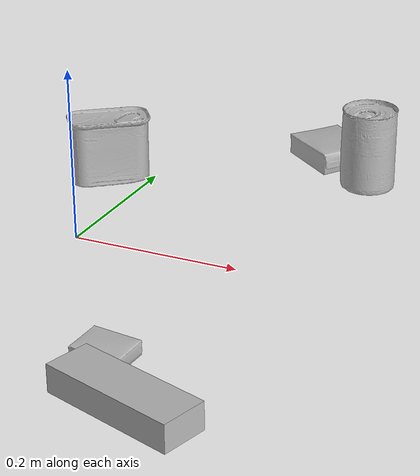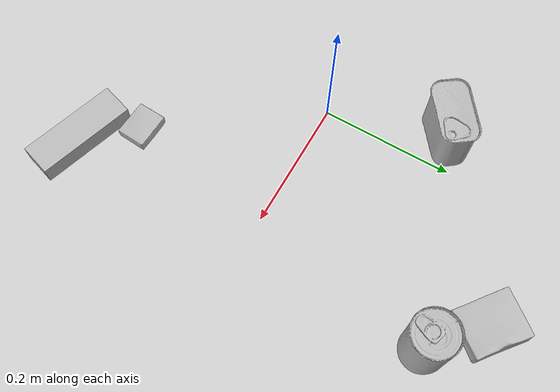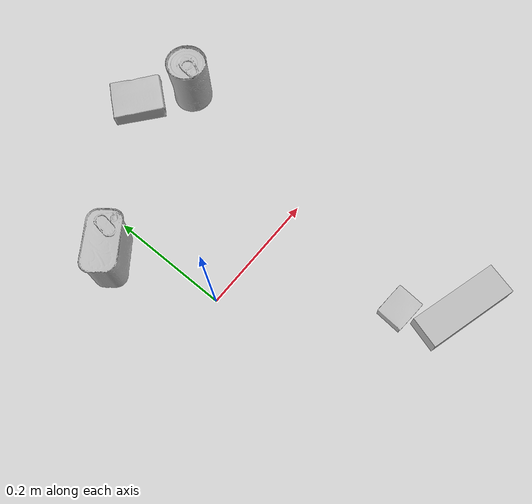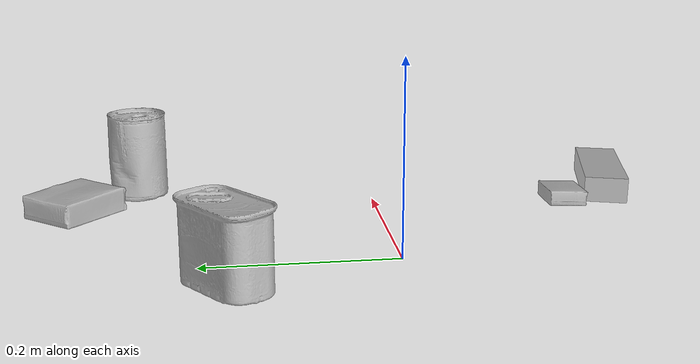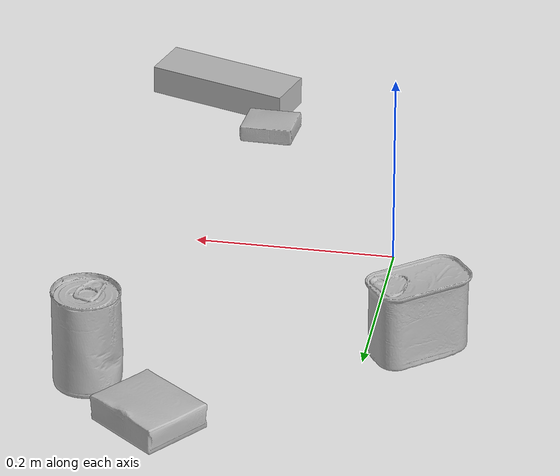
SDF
<sdf version="1.4">
  <world name="default">
    <light name="light1" type="point">
      <pose>0 0 1 0 0 0</pose>
      <diffuse>3 3 3 1</diffuse>
      <specular>3 3 3 1</specular>
    </light>
    <light name="light2" type="point">
      <pose>0 0.5 2 0 0 0</pose>
      <diffuse>1 1 1 1</diffuse>
      <specular>1 1 1 1</specular>
    </light>
    <light name="light3" type="point">
      <pose>0 0.5 2 0 0 0</pose>
      <diffuse>3 3 3 1</diffuse>
      <specular>3 3 3 1</specular>
    </light>
    <scene>
      <ambient>0.7 0.7 0.7</ambient>
    </scene>
    <model name="box1">
      <link name="link_box1">
        <collision name="default">
          <geometry>
            <mesh>
              <uri>model://pudding_box/collision_meshes/collision.obj</uri>
              <scale>0.5 0.5 0.5</scale>
            </mesh>
          </geometry>
          <surface>
            <friction>
              <ode>
                <mu>0.5</mu>
                <mu2>0.5</mu2>
              </ode>
            </friction>
          <contact>
        <ode>
            <max_vel>0</max_vel>
            <min_depth>0.0001</min_depth>
            <kp>1e8</kp>
        </ode>
    </contact></surface>
        </collision>
        <visual name="default">
          <geometry>
            <mesh>
              <uri>model://pudding_box/visual_meshes/visual.dae</uri>
              <scale>0.5 0.5 0.5</scale>
            </mesh>
          </geometry>
        </visual>
        <inertial>
          <mass>0.040720973163843155</mass>
          <pose>0.00024474109522998333 0.0004033942532259971 -0.0002594413817860186 0.005213101818388509 -0.006603799159636292 0.020079815843731863</pose>
          <inertia>
            <ixx>1.1508242e-05</ixx>
            <iyy>7.742825e-06</iyy>
            <izz>1.6994923e-05</izz>
            <ixy>0</ixy>
            <ixz>0</ixz>
            <iyz>0</iyz>
          </inertia>
        </inertial>
      </link>
      <pose>0.16370108723640442 -0.22565865516662598 0.00986290443688631 0.02234853861392874 -0.011391733787687453 1.4905696207448373</pose>
    </model>
    <model name="box2">
      <link name="link_box2">
        <collision name="default">
          <geometry>
            <mesh>
              <uri>model://jenga/collision_meshes/collision.obj</uri>
              <scale>1.0 1.0 1.0</scale>
            </mesh>
          </geometry>
          <surface>
            <friction>
              <ode>
                <mu>0.5</mu>
                <mu2>0.5</mu2>
              </ode>
            </friction>
          <contact>
        <ode>
            <max_vel>0</max_vel>
            <min_depth>0.0001</min_depth>
            <kp>1e8</kp>
        </ode>
    </contact></surface>
        </collision>
        <visual name="default">
          <geometry>
            <mesh>
              <uri>model://jenga/visual_meshes/visual.dae</uri>
              <scale>1.0 1.0 1.0</scale>
            </mesh>
          </geometry>
        </visual>
        <inertial>
          <mass>0.2260044664144516</mass>
          <pose>-2.502855807051674e-07 -0.00010250010382151231 -4.0923401684267446e-05 0.0 -7.34215461761844e-07 0.0</pose>
          <inertia>
            <ixx>6.254092e-05</ixx>
            <iyy>0.00042377558</iyy>
            <izz>0.00045241645</izz>
            <ixy>0</ixy>
            <ixz>0</ixz>
            <iyz>0</iyz>
          </inertia>
        </inertial>
      </link>
      <pose>0.2221561223268509 -0.2973788380622864 0.015000000596046448 -1.9889607022496598e-08 -2.6558969585345077e-09 -0.30501339531755367</pose>
    </model>
    <model name="box3">
      <link name="link_box3">
        <collision name="default">
          <geometry>
            <mesh>
              <uri>model://gelatin_box/collision_meshes/collision.obj</uri>
              <scale>1.0 1.0 1.0</scale>
            </mesh>
          </geometry>
          <surface>
            <friction>
              <ode>
                <mu>0.5</mu>
                <mu2>0.5</mu2>
              </ode>
            </friction>
          <contact>
        <ode>
            <max_vel>0</max_vel>
            <min_depth>0.0001</min_depth>
            <kp>1e8</kp>
        </ode>
    </contact></surface>
        </collision>
        <visual name="default">
          <geometry>
            <mesh>
              <uri>model://gelatin_box/visual_meshes/visual.dae</uri>
              <scale>1.0 1.0 1.0</scale>
            </mesh>
          </geometry>
        </visual>
        <inertial>
          <mass>0.21249663829803467</mass>
          <pose>0.000431961816502735 0.00011156871914863586 -0.0003640321083366871 -0.0010503720865678746 -0.004755816824885886 0.016440563196489677</pose>
          <inertia>
            <ixx>0.00015000527</ixx>
            <iyy>0.000107147986</iyy>
            <izz>0.00022834145</izz>
            <ixy>0</ixy>
            <ixz>0</ixz>
            <iyz>0</iyz>
          </inertia>
        </inertial>
      </link>
      <pose>0.1823674887418747 0.34366488456726074 0.015168309211730957 0.005597020976332927 -0.007304070384122358 0.8954139422398979</pose>
    </model>
    <model name="can1">
      <link name="link_can1">
        <collision name="default">
          <geometry>
            <mesh>
              <uri>model://tomato_soup_can/collision_meshes/collision.obj</uri>
              <scale>1.0 1.0 1.0</scale>
            </mesh>
          </geometry>
          <surface>
            <friction>
              <ode>
                <mu>0.5</mu>
                <mu2>0.5</mu2>
              </ode>
            </friction>
          <contact>
        <ode>
            <max_vel>0</max_vel>
            <min_depth>0.0001</min_depth>
            <kp>1e8</kp>
        </ode>
    </contact></surface>
        </collision>
        <visual name="default">
          <geometry>
            <mesh>
              <uri>model://tomato_soup_can/visual_meshes/visual.dae</uri>
              <scale>1.0 1.0 1.0</scale>
            </mesh>
          </geometry>
        </visual>
        <inertial>
          <mass>0.23179346323013306</mass>
          <pose>0.00012652273289859295 0.00010805525380419567 -0.0017973976209759712 0.00702006934742656 0.00042299045868732465 -0.009902874376192201</pose>
          <inertia>
            <ixx>0.0002541419</ixx>
            <iyy>0.00025267305</iyy>
            <izz>0.00013171937</izz>
            <ixy>0</ixy>
            <ixz>0</ixz>
            <iyz>0</iyz>
          </inertia>
        </inertial>
      </link>
      <pose>0.254375696182251 0.2796277105808258 0.05127402022480965 -6.472301902805726e-07 -9.977279721769708e-07 -0.5677391233370964</pose>
    </model>
    <model name="can2">
      <link name="link_can2">
        <collision name="default">
          <geometry>
            <mesh>
              <uri>model://potted_meat_can/collision_meshes/collision.obj</uri>
              <scale>1.0 1.0 1.0</scale>
            </mesh>
          </geometry>
          <surface>
            <friction>
              <ode>
                <mu>0.5</mu>
                <mu2>0.5</mu2>
              </ode>
            </friction>
          <contact>
        <ode>
            <max_vel>0</max_vel>
            <min_depth>0.0001</min_depth>
            <kp>1e8</kp>
        </ode>
    </contact></surface>
        </collision>
        <visual name="default">
          <geometry>
            <mesh>
              <uri>model://potted_meat_can/visual_meshes/visual.dae</uri>
              <scale>1.0 1.0 1.0</scale>
            </mesh>
          </geometry>
        </visual>
        <inertial>
          <mass>0.3195023536682129</mass>
          <pose>0.00022888148669153452 -5.98910846747458e-05 -0.0006367437308654189 -0.028093352727545092 -0.0072326048209280834 0.015406269022640915</pose>
          <inertia>
            <ixx>0.00041100648</ixx>
            <iyy>0.0002497176</iyy>
            <izz>0.00029892896</izz>
            <ixy>0</ixy>
            <ixz>0</ixz>
            <iyz>0</iyz>
          </inertia>
        </inertial>
      </link>
      <pose>-0.04921232908964157 0.17045001685619354 0.042128000408411026 -1.5496755922795986e-08 -3.115905980640338e-07 2.216668079609817</pose>
    </model>
  <physics type="ode">
      <max_contacts>50</max_contacts>
      <ode>
        <solver>
          <type>quick</type>
          <iters>75</iters>
        </solver>
        <constraints>
          <contact_max_correcting_vel>0</contact_max_correcting_vel>
          <contact_surface_layer>0</contact_surface_layer>
        </constraints>
      </ode>
    </physics></world>
</sdf>
